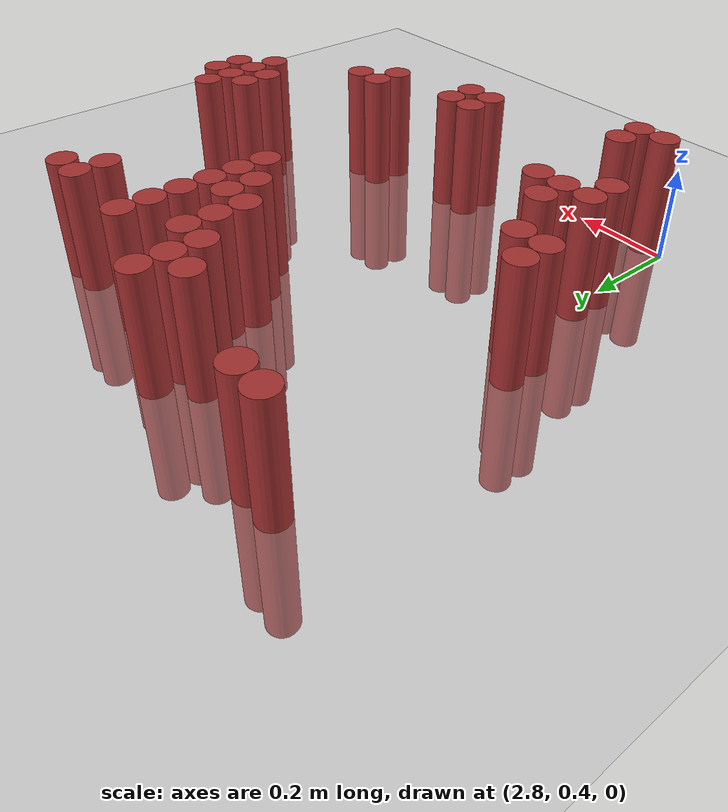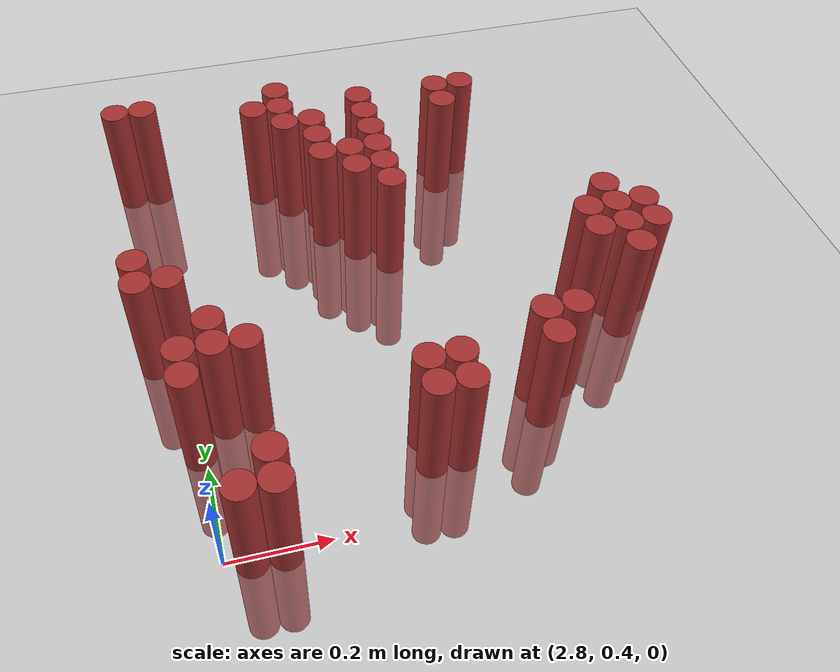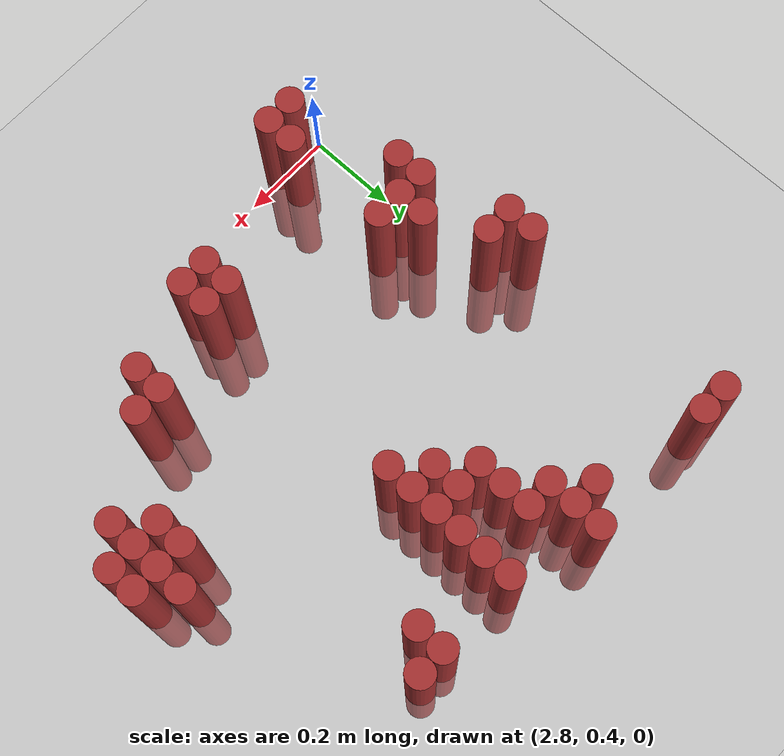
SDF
<sdf version="1.6">
 <world name="default">
  <model name="ground_plane">
   <static>1</static>
   <link name="link">
    <collision name="collision">
     <geometry><plane><normal>0 0 1</normal><size>100 100</size></plane></geometry>
     <surface><friction><ode><mu>100</mu><mu2>50</mu2></ode></friction></surface>
    </collision>
    <visual name="visual">
     <cast_shadows>0</cast_shadows>
     <geometry><plane><normal>0 0 1</normal><size>100 100</size></plane></geometry>
     <material>
      <script><uri>file://media/materials/scripts/gazebo.material</uri><name>Gazebo/Grey</name></script>
     </material>
    </visual>
   </link>
  </model>
  <model name="unit_cylinder_158">
   <static>1</static>
   <pose>2.730000 1.410000 0.000000 0.000000 0.000000 0.000000</pose>
   <link name="link">
    <inertial>
     <mass>1</mass>
     <inertia><ixx>0.145833</ixx><ixy>0</ixy><ixz>0</ixz><iyy>0.145833</iyy><iyz>0</iyz><izz>0.125</izz></inertia>
    </inertial>
    <collision name="collision">
     <geometry><cylinder><radius>0.030000</radius><length>0.5</length></cylinder></geometry>
    </collision>
    <visual name="visual">
     <geometry><cylinder><radius>0.030000</radius><length>0.5</length></cylinder></geometry>
     <material>
      <ambient>0.648000 0.192000 0.192000 1</ambient>
      <diffuse>0.648000 0.192000 0.192000 1</diffuse>
     </material>
     <material>
      <script><name>Gazebo/Grey</name><uri>file://media/materials/scripts/gazebo.material</uri></script>
     </material>
    </visual>
   </link>
  </model>
  <model name="unit_cylinder_159">
   <static>1</static>
   <pose>2.790000 1.410000 0.000000 0.000000 0.000000 0.000000</pose>
   <link name="link">
    <inertial>
     <mass>1</mass>
     <inertia><ixx>0.145833</ixx><ixy>0</ixy><ixz>0</ixz><iyy>0.145833</iyy><iyz>0</iyz><izz>0.125</izz></inertia>
    </inertial>
    <collision name="collision">
     <geometry><cylinder><radius>0.030000</radius><length>0.5</length></cylinder></geometry>
    </collision>
    <visual name="visual">
     <geometry><cylinder><radius>0.030000</radius><length>0.5</length></cylinder></geometry>
     <material>
      <ambient>0.648000 0.192000 0.192000 1</ambient>
      <diffuse>0.648000 0.192000 0.192000 1</diffuse>
     </material>
     <material>
      <script><name>Gazebo/Grey</name><uri>file://media/materials/scripts/gazebo.material</uri></script>
     </material>
    </visual>
   </link>
  </model>
  <model name="unit_cylinder_160">
   <static>1</static>
   <pose>3.090000 1.410000 0.000000 0.000000 0.000000 0.000000</pose>
   <link name="link">
    <inertial>
     <mass>1</mass>
     <inertia><ixx>0.145833</ixx><ixy>0</ixy><ixz>0</ixz><iyy>0.145833</iyy><iyz>0</iyz><izz>0.125</izz></inertia>
    </inertial>
    <collision name="collision">
     <geometry><cylinder><radius>0.030000</radius><length>0.5</length></cylinder></geometry>
    </collision>
    <visual name="visual">
     <geometry><cylinder><radius>0.030000</radius><length>0.5</length></cylinder></geometry>
     <material>
      <ambient>0.648000 0.192000 0.192000 1</ambient>
      <diffuse>0.648000 0.192000 0.192000 1</diffuse>
     </material>
     <material>
      <script><name>Gazebo/Grey</name><uri>file://media/materials/scripts/gazebo.material</uri></script>
     </material>
    </visual>
   </link>
  </model>
  <model name="unit_cylinder_164">
   <static>1</static>
   <pose>3.030000 1.350000 0.000000 0.000000 0.000000 0.000000</pose>
   <link name="link">
    <inertial>
     <mass>1</mass>
     <inertia><ixx>0.145833</ixx><ixy>0</ixy><ixz>0</ixz><iyy>0.145833</iyy><iyz>0</iyz><izz>0.125</izz></inertia>
    </inertial>
    <collision name="collision">
     <geometry><cylinder><radius>0.030000</radius><length>0.5</length></cylinder></geometry>
    </collision>
    <visual name="visual">
     <geometry><cylinder><radius>0.030000</radius><length>0.5</length></cylinder></geometry>
     <material>
      <ambient>0.648000 0.192000 0.192000 1</ambient>
      <diffuse>0.648000 0.192000 0.192000 1</diffuse>
     </material>
     <material>
      <script><name>Gazebo/Grey</name><uri>file://media/materials/scripts/gazebo.material</uri></script>
     </material>
    </visual>
   </link>
  </model>
  <model name="unit_cylinder_165">
   <static>1</static>
   <pose>3.090000 1.350000 0.000000 0.000000 0.000000 0.000000</pose>
   <link name="link">
    <inertial>
     <mass>1</mass>
     <inertia><ixx>0.145833</ixx><ixy>0</ixy><ixz>0</ixz><iyy>0.145833</iyy><iyz>0</iyz><izz>0.125</izz></inertia>
    </inertial>
    <collision name="collision">
     <geometry><cylinder><radius>0.030000</radius><length>0.5</length></cylinder></geometry>
    </collision>
    <visual name="visual">
     <geometry><cylinder><radius>0.030000</radius><length>0.5</length></cylinder></geometry>
     <material>
      <ambient>0.648000 0.192000 0.192000 1</ambient>
      <diffuse>0.648000 0.192000 0.192000 1</diffuse>
     </material>
     <material>
      <script><name>Gazebo/Grey</name><uri>file://media/materials/scripts/gazebo.material</uri></script>
     </material>
    </visual>
   </link>
  </model>
  <model name="unit_cylinder_166">
   <static>1</static>
   <pose>3.270000 1.350000 0.000000 0.000000 0.000000 0.000000</pose>
   <link name="link">
    <inertial>
     <mass>1</mass>
     <inertia><ixx>0.145833</ixx><ixy>0</ixy><ixz>0</ixz><iyy>0.145833</iyy><iyz>0</iyz><izz>0.125</izz></inertia>
    </inertial>
    <collision name="collision">
     <geometry><cylinder><radius>0.030000</radius><length>0.5</length></cylinder></geometry>
    </collision>
    <visual name="visual">
     <geometry><cylinder><radius>0.030000</radius><length>0.5</length></cylinder></geometry>
     <material>
      <ambient>0.648000 0.192000 0.192000 1</ambient>
      <diffuse>0.648000 0.192000 0.192000 1</diffuse>
     </material>
     <material>
      <script><name>Gazebo/Grey</name><uri>file://media/materials/scripts/gazebo.material</uri></script>
     </material>
    </visual>
   </link>
  </model>
  <model name="unit_cylinder_167">
   <static>1</static>
   <pose>3.450000 1.350000 0.000000 0.000000 0.000000 0.000000</pose>
   <link name="link">
    <inertial>
     <mass>1</mass>
     <inertia><ixx>0.145833</ixx><ixy>0</ixy><ixz>0</ixz><iyy>0.145833</iyy><iyz>0</iyz><izz>0.125</izz></inertia>
    </inertial>
    <collision name="collision">
     <geometry><cylinder><radius>0.030000</radius><length>0.5</length></cylinder></geometry>
    </collision>
    <visual name="visual">
     <geometry><cylinder><radius>0.030000</radius><length>0.5</length></cylinder></geometry>
     <material>
      <ambient>0.648000 0.192000 0.192000 1</ambient>
      <diffuse>0.648000 0.192000 0.192000 1</diffuse>
     </material>
     <material>
      <script><name>Gazebo/Grey</name><uri>file://media/materials/scripts/gazebo.material</uri></script>
     </material>
    </visual>
   </link>
  </model>
  <model name="unit_cylinder_168">
   <static>1</static>
   <pose>3.510000 1.350000 0.000000 0.000000 0.000000 0.000000</pose>
   <link name="link">
    <inertial>
     <mass>1</mass>
     <inertia><ixx>0.145833</ixx><ixy>0</ixy><ixz>0</ixz><iyy>0.145833</iyy><iyz>0</iyz><izz>0.125</izz></inertia>
    </inertial>
    <collision name="collision">
     <geometry><cylinder><radius>0.030000</radius><length>0.5</length></cylinder></geometry>
    </collision>
    <visual name="visual">
     <geometry><cylinder><radius>0.030000</radius><length>0.5</length></cylinder></geometry>
     <material>
      <ambient>0.648000 0.192000 0.192000 1</ambient>
      <diffuse>0.648000 0.192000 0.192000 1</diffuse>
     </material>
     <material>
      <script><name>Gazebo/Grey</name><uri>file://media/materials/scripts/gazebo.material</uri></script>
     </material>
    </visual>
   </link>
  </model>
  <model name="unit_cylinder_169">
   <static>1</static>
   <pose>3.090000 1.290000 0.000000 0.000000 0.000000 0.000000</pose>
   <link name="link">
    <inertial>
     <mass>1</mass>
     <inertia><ixx>0.145833</ixx><ixy>0</ixy><ixz>0</ixz><iyy>0.145833</iyy><iyz>0</iyz><izz>0.125</izz></inertia>
    </inertial>
    <collision name="collision">
     <geometry><cylinder><radius>0.030000</radius><length>0.5</length></cylinder></geometry>
    </collision>
    <visual name="visual">
     <geometry><cylinder><radius>0.030000</radius><length>0.5</length></cylinder></geometry>
     <material>
      <ambient>0.648000 0.192000 0.192000 1</ambient>
      <diffuse>0.648000 0.192000 0.192000 1</diffuse>
     </material>
     <material>
      <script><name>Gazebo/Grey</name><uri>file://media/materials/scripts/gazebo.material</uri></script>
     </material>
    </visual>
   </link>
  </model>
  <model name="unit_cylinder_170">
   <static>1</static>
   <pose>3.150000 1.290000 0.000000 0.000000 0.000000 0.000000</pose>
   <link name="link">
    <inertial>
     <mass>1</mass>
     <inertia><ixx>0.145833</ixx><ixy>0</ixy><ixz>0</ixz><iyy>0.145833</iyy><iyz>0</iyz><izz>0.125</izz></inertia>
    </inertial>
    <collision name="collision">
     <geometry><cylinder><radius>0.030000</radius><length>0.5</length></cylinder></geometry>
    </collision>
    <visual name="visual">
     <geometry><cylinder><radius>0.030000</radius><length>0.5</length></cylinder></geometry>
     <material>
      <ambient>0.648000 0.192000 0.192000 1</ambient>
      <diffuse>0.648000 0.192000 0.192000 1</diffuse>
     </material>
     <material>
      <script><name>Gazebo/Grey</name><uri>file://media/materials/scripts/gazebo.material</uri></script>
     </material>
    </visual>
   </link>
  </model>
  <model name="unit_cylinder_171">
   <static>1</static>
   <pose>3.270000 1.290000 0.000000 0.000000 0.000000 0.000000</pose>
   <link name="link">
    <inertial>
     <mass>1</mass>
     <inertia><ixx>0.145833</ixx><ixy>0</ixy><ixz>0</ixz><iyy>0.145833</iyy><iyz>0</iyz><izz>0.125</izz></inertia>
    </inertial>
    <collision name="collision">
     <geometry><cylinder><radius>0.030000</radius><length>0.5</length></cylinder></geometry>
    </collision>
    <visual name="visual">
     <geometry><cylinder><radius>0.030000</radius><length>0.5</length></cylinder></geometry>
     <material>
      <ambient>0.648000 0.192000 0.192000 1</ambient>
      <diffuse>0.648000 0.192000 0.192000 1</diffuse>
     </material>
     <material>
      <script><name>Gazebo/Grey</name><uri>file://media/materials/scripts/gazebo.material</uri></script>
     </material>
    </visual>
   </link>
  </model>
  <model name="unit_cylinder_172">
   <static>1</static>
   <pose>3.450000 1.290000 0.000000 0.000000 0.000000 0.000000</pose>
   <link name="link">
    <inertial>
     <mass>1</mass>
     <inertia><ixx>0.145833</ixx><ixy>0</ixy><ixz>0</ixz><iyy>0.145833</iyy><iyz>0</iyz><izz>0.125</izz></inertia>
    </inertial>
    <collision name="collision">
     <geometry><cylinder><radius>0.030000</radius><length>0.5</length></cylinder></geometry>
    </collision>
    <visual name="visual">
     <geometry><cylinder><radius>0.030000</radius><length>0.5</length></cylinder></geometry>
     <material>
      <ambient>0.648000 0.192000 0.192000 1</ambient>
      <diffuse>0.648000 0.192000 0.192000 1</diffuse>
     </material>
     <material>
      <script><name>Gazebo/Grey</name><uri>file://media/materials/scripts/gazebo.material</uri></script>
     </material>
    </visual>
   </link>
  </model>
  <model name="unit_cylinder_175">
   <static>1</static>
   <pose>3.150000 1.230000 0.000000 0.000000 0.000000 0.000000</pose>
   <link name="link">
    <inertial>
     <mass>1</mass>
     <inertia><ixx>0.145833</ixx><ixy>0</ixy><ixz>0</ixz><iyy>0.145833</iyy><iyz>0</iyz><izz>0.125</izz></inertia>
    </inertial>
    <collision name="collision">
     <geometry><cylinder><radius>0.030000</radius><length>0.5</length></cylinder></geometry>
    </collision>
    <visual name="visual">
     <geometry><cylinder><radius>0.030000</radius><length>0.5</length></cylinder></geometry>
     <material>
      <ambient>0.648000 0.192000 0.192000 1</ambient>
      <diffuse>0.648000 0.192000 0.192000 1</diffuse>
     </material>
     <material>
      <script><name>Gazebo/Grey</name><uri>file://media/materials/scripts/gazebo.material</uri></script>
     </material>
    </visual>
   </link>
  </model>
  <model name="unit_cylinder_176">
   <static>1</static>
   <pose>3.270000 1.230000 0.000000 0.000000 0.000000 0.000000</pose>
   <link name="link">
    <inertial>
     <mass>1</mass>
     <inertia><ixx>0.145833</ixx><ixy>0</ixy><ixz>0</ixz><iyy>0.145833</iyy><iyz>0</iyz><izz>0.125</izz></inertia>
    </inertial>
    <collision name="collision">
     <geometry><cylinder><radius>0.030000</radius><length>0.5</length></cylinder></geometry>
    </collision>
    <visual name="visual">
     <geometry><cylinder><radius>0.030000</radius><length>0.5</length></cylinder></geometry>
     <material>
      <ambient>0.648000 0.192000 0.192000 1</ambient>
      <diffuse>0.648000 0.192000 0.192000 1</diffuse>
     </material>
     <material>
      <script><name>Gazebo/Grey</name><uri>file://media/materials/scripts/gazebo.material</uri></script>
     </material>
    </visual>
   </link>
  </model>
  <model name="unit_cylinder_179">
   <static>1</static>
   <pose>3.150000 1.170000 0.000000 0.000000 0.000000 0.000000</pose>
   <link name="link">
    <inertial>
     <mass>1</mass>
     <inertia><ixx>0.145833</ixx><ixy>0</ixy><ixz>0</ixz><iyy>0.145833</iyy><iyz>0</iyz><izz>0.125</izz></inertia>
    </inertial>
    <collision name="collision">
     <geometry><cylinder><radius>0.030000</radius><length>0.5</length></cylinder></geometry>
    </collision>
    <visual name="visual">
     <geometry><cylinder><radius>0.030000</radius><length>0.5</length></cylinder></geometry>
     <material>
      <ambient>0.648000 0.192000 0.192000 1</ambient>
      <diffuse>0.648000 0.192000 0.192000 1</diffuse>
     </material>
     <material>
      <script><name>Gazebo/Grey</name><uri>file://media/materials/scripts/gazebo.material</uri></script>
     </material>
    </visual>
   </link>
  </model>
  <model name="unit_cylinder_180">
   <static>1</static>
   <pose>3.210000 1.170000 0.000000 0.000000 0.000000 0.000000</pose>
   <link name="link">
    <inertial>
     <mass>1</mass>
     <inertia><ixx>0.145833</ixx><ixy>0</ixy><ixz>0</ixz><iyy>0.145833</iyy><iyz>0</iyz><izz>0.125</izz></inertia>
    </inertial>
    <collision name="collision">
     <geometry><cylinder><radius>0.030000</radius><length>0.5</length></cylinder></geometry>
    </collision>
    <visual name="visual">
     <geometry><cylinder><radius>0.030000</radius><length>0.5</length></cylinder></geometry>
     <material>
      <ambient>0.648000 0.192000 0.192000 1</ambient>
      <diffuse>0.648000 0.192000 0.192000 1</diffuse>
     </material>
     <material>
      <script><name>Gazebo/Grey</name><uri>file://media/materials/scripts/gazebo.material</uri></script>
     </material>
    </visual>
   </link>
  </model>
  <model name="unit_cylinder_181">
   <static>1</static>
   <pose>3.270000 1.170000 0.000000 0.000000 0.000000 0.000000</pose>
   <link name="link">
    <inertial>
     <mass>1</mass>
     <inertia><ixx>0.145833</ixx><ixy>0</ixy><ixz>0</ixz><iyy>0.145833</iyy><iyz>0</iyz><izz>0.125</izz></inertia>
    </inertial>
    <collision name="collision">
     <geometry><cylinder><radius>0.030000</radius><length>0.5</length></cylinder></geometry>
    </collision>
    <visual name="visual">
     <geometry><cylinder><radius>0.030000</radius><length>0.5</length></cylinder></geometry>
     <material>
      <ambient>0.648000 0.192000 0.192000 1</ambient>
      <diffuse>0.648000 0.192000 0.192000 1</diffuse>
     </material>
     <material>
      <script><name>Gazebo/Grey</name><uri>file://media/materials/scripts/gazebo.material</uri></script>
     </material>
    </visual>
   </link>
  </model>
  <model name="unit_cylinder_183">
   <static>1</static>
   <pose>3.210000 1.110000 0.000000 0.000000 0.000000 0.000000</pose>
   <link name="link">
    <inertial>
     <mass>1</mass>
     <inertia><ixx>0.145833</ixx><ixy>0</ixy><ixz>0</ixz><iyy>0.145833</iyy><iyz>0</iyz><izz>0.125</izz></inertia>
    </inertial>
    <collision name="collision">
     <geometry><cylinder><radius>0.030000</radius><length>0.5</length></cylinder></geometry>
    </collision>
    <visual name="visual">
     <geometry><cylinder><radius>0.030000</radius><length>0.5</length></cylinder></geometry>
     <material>
      <ambient>0.648000 0.192000 0.192000 1</ambient>
      <diffuse>0.648000 0.192000 0.192000 1</diffuse>
     </material>
     <material>
      <script><name>Gazebo/Grey</name><uri>file://media/materials/scripts/gazebo.material</uri></script>
     </material>
    </visual>
   </link>
  </model>
  <model name="unit_cylinder_184">
   <static>1</static>
   <pose>3.270000 1.110000 0.000000 0.000000 0.000000 0.000000</pose>
   <link name="link">
    <inertial>
     <mass>1</mass>
     <inertia><ixx>0.145833</ixx><ixy>0</ixy><ixz>0</ixz><iyy>0.145833</iyy><iyz>0</iyz><izz>0.125</izz></inertia>
    </inertial>
    <collision name="collision">
     <geometry><cylinder><radius>0.030000</radius><length>0.5</length></cylinder></geometry>
    </collision>
    <visual name="visual">
     <geometry><cylinder><radius>0.030000</radius><length>0.5</length></cylinder></geometry>
     <material>
      <ambient>0.648000 0.192000 0.192000 1</ambient>
      <diffuse>0.648000 0.192000 0.192000 1</diffuse>
     </material>
     <material>
      <script><name>Gazebo/Grey</name><uri>file://media/materials/scripts/gazebo.material</uri></script>
     </material>
    </visual>
   </link>
  </model>
  <model name="unit_cylinder_187">
   <static>1</static>
   <pose>3.270000 1.050000 0.000000 0.000000 0.000000 0.000000</pose>
   <link name="link">
    <inertial>
     <mass>1</mass>
     <inertia><ixx>0.145833</ixx><ixy>0</ixy><ixz>0</ixz><iyy>0.145833</iyy><iyz>0</iyz><izz>0.125</izz></inertia>
    </inertial>
    <collision name="collision">
     <geometry><cylinder><radius>0.030000</radius><length>0.5</length></cylinder></geometry>
    </collision>
    <visual name="visual">
     <geometry><cylinder><radius>0.030000</radius><length>0.5</length></cylinder></geometry>
     <material>
      <ambient>0.648000 0.192000 0.192000 1</ambient>
      <diffuse>0.648000 0.192000 0.192000 1</diffuse>
     </material>
     <material>
      <script><name>Gazebo/Grey</name><uri>file://media/materials/scripts/gazebo.material</uri></script>
     </material>
    </visual>
   </link>
  </model>
  <model name="unit_cylinder_188">
   <static>1</static>
   <pose>2.730000 0.930000 0.000000 0.000000 0.000000 0.000000</pose>
   <link name="link">
    <inertial>
     <mass>1</mass>
     <inertia><ixx>0.145833</ixx><ixy>0</ixy><ixz>0</ixz><iyy>0.145833</iyy><iyz>0</iyz><izz>0.125</izz></inertia>
    </inertial>
    <collision name="collision">
     <geometry><cylinder><radius>0.030000</radius><length>0.5</length></cylinder></geometry>
    </collision>
    <visual name="visual">
     <geometry><cylinder><radius>0.030000</radius><length>0.5</length></cylinder></geometry>
     <material>
      <ambient>0.648000 0.192000 0.192000 1</ambient>
      <diffuse>0.648000 0.192000 0.192000 1</diffuse>
     </material>
     <material>
      <script><name>Gazebo/Grey</name><uri>file://media/materials/scripts/gazebo.material</uri></script>
     </material>
    </visual>
   </link>
  </model>
  <model name="unit_cylinder_189">
   <static>1</static>
   <pose>3.690000 0.930000 0.000000 0.000000 0.000000 0.000000</pose>
   <link name="link">
    <inertial>
     <mass>1</mass>
     <inertia><ixx>0.145833</ixx><ixy>0</ixy><ixz>0</ixz><iyy>0.145833</iyy><iyz>0</iyz><izz>0.125</izz></inertia>
    </inertial>
    <collision name="collision">
     <geometry><cylinder><radius>0.030000</radius><length>0.5</length></cylinder></geometry>
    </collision>
    <visual name="visual">
     <geometry><cylinder><radius>0.030000</radius><length>0.5</length></cylinder></geometry>
     <material>
      <ambient>0.648000 0.192000 0.192000 1</ambient>
      <diffuse>0.648000 0.192000 0.192000 1</diffuse>
     </material>
     <material>
      <script><name>Gazebo/Grey</name><uri>file://media/materials/scripts/gazebo.material</uri></script>
     </material>
    </visual>
   </link>
  </model>
  <model name="unit_cylinder_190">
   <static>1</static>
   <pose>2.730000 0.870000 0.000000 0.000000 0.000000 0.000000</pose>
   <link name="link">
    <inertial>
     <mass>1</mass>
     <inertia><ixx>0.145833</ixx><ixy>0</ixy><ixz>0</ixz><iyy>0.145833</iyy><iyz>0</iyz><izz>0.125</izz></inertia>
    </inertial>
    <collision name="collision">
     <geometry><cylinder><radius>0.030000</radius><length>0.5</length></cylinder></geometry>
    </collision>
    <visual name="visual">
     <geometry><cylinder><radius>0.030000</radius><length>0.5</length></cylinder></geometry>
     <material>
      <ambient>0.648000 0.192000 0.192000 1</ambient>
      <diffuse>0.648000 0.192000 0.192000 1</diffuse>
     </material>
     <material>
      <script><name>Gazebo/Grey</name><uri>file://media/materials/scripts/gazebo.material</uri></script>
     </material>
    </visual>
   </link>
  </model>
  <model name="unit_cylinder_191">
   <static>1</static>
   <pose>2.790000 0.870000 0.000000 0.000000 0.000000 0.000000</pose>
   <link name="link">
    <inertial>
     <mass>1</mass>
     <inertia><ixx>0.145833</ixx><ixy>0</ixy><ixz>0</ixz><iyy>0.145833</iyy><iyz>0</iyz><izz>0.125</izz></inertia>
    </inertial>
    <collision name="collision">
     <geometry><cylinder><radius>0.030000</radius><length>0.5</length></cylinder></geometry>
    </collision>
    <visual name="visual">
     <geometry><cylinder><radius>0.030000</radius><length>0.5</length></cylinder></geometry>
     <material>
      <ambient>0.648000 0.192000 0.192000 1</ambient>
      <diffuse>0.648000 0.192000 0.192000 1</diffuse>
     </material>
     <material>
      <script><name>Gazebo/Grey</name><uri>file://media/materials/scripts/gazebo.material</uri></script>
     </material>
    </visual>
   </link>
  </model>
  <model name="unit_cylinder_192">
   <static>1</static>
   <pose>3.630000 0.870000 0.000000 0.000000 0.000000 0.000000</pose>
   <link name="link">
    <inertial>
     <mass>1</mass>
     <inertia><ixx>0.145833</ixx><ixy>0</ixy><ixz>0</ixz><iyy>0.145833</iyy><iyz>0</iyz><izz>0.125</izz></inertia>
    </inertial>
    <collision name="collision">
     <geometry><cylinder><radius>0.030000</radius><length>0.5</length></cylinder></geometry>
    </collision>
    <visual name="visual">
     <geometry><cylinder><radius>0.030000</radius><length>0.5</length></cylinder></geometry>
     <material>
      <ambient>0.648000 0.192000 0.192000 1</ambient>
      <diffuse>0.648000 0.192000 0.192000 1</diffuse>
     </material>
     <material>
      <script><name>Gazebo/Grey</name><uri>file://media/materials/scripts/gazebo.material</uri></script>
     </material>
    </visual>
   </link>
  </model>
  <model name="unit_cylinder_193">
   <static>1</static>
   <pose>3.690000 0.870000 0.000000 0.000000 0.000000 0.000000</pose>
   <link name="link">
    <inertial>
     <mass>1</mass>
     <inertia><ixx>0.145833</ixx><ixy>0</ixy><ixz>0</ixz><iyy>0.145833</iyy><iyz>0</iyz><izz>0.125</izz></inertia>
    </inertial>
    <collision name="collision">
     <geometry><cylinder><radius>0.030000</radius><length>0.5</length></cylinder></geometry>
    </collision>
    <visual name="visual">
     <geometry><cylinder><radius>0.030000</radius><length>0.5</length></cylinder></geometry>
     <material>
      <ambient>0.648000 0.192000 0.192000 1</ambient>
      <diffuse>0.648000 0.192000 0.192000 1</diffuse>
     </material>
     <material>
      <script><name>Gazebo/Grey</name><uri>file://media/materials/scripts/gazebo.material</uri></script>
     </material>
    </visual>
   </link>
  </model>
  <model name="unit_cylinder_194">
   <static>1</static>
   <pose>3.750000 0.870000 0.000000 0.000000 0.000000 0.000000</pose>
   <link name="link">
    <inertial>
     <mass>1</mass>
     <inertia><ixx>0.145833</ixx><ixy>0</ixy><ixz>0</ixz><iyy>0.145833</iyy><iyz>0</iyz><izz>0.125</izz></inertia>
    </inertial>
    <collision name="collision">
     <geometry><cylinder><radius>0.030000</radius><length>0.5</length></cylinder></geometry>
    </collision>
    <visual name="visual">
     <geometry><cylinder><radius>0.030000</radius><length>0.5</length></cylinder></geometry>
     <material>
      <ambient>0.648000 0.192000 0.192000 1</ambient>
      <diffuse>0.648000 0.192000 0.192000 1</diffuse>
     </material>
     <material>
      <script><name>Gazebo/Grey</name><uri>file://media/materials/scripts/gazebo.material</uri></script>
     </material>
    </visual>
   </link>
  </model>
  <model name="unit_cylinder_195">
   <static>1</static>
   <pose>3.630000 0.810000 0.000000 0.000000 0.000000 0.000000</pose>
   <link name="link">
    <inertial>
     <mass>1</mass>
     <inertia><ixx>0.145833</ixx><ixy>0</ixy><ixz>0</ixz><iyy>0.145833</iyy><iyz>0</iyz><izz>0.125</izz></inertia>
    </inertial>
    <collision name="collision">
     <geometry><cylinder><radius>0.030000</radius><length>0.5</length></cylinder></geometry>
    </collision>
    <visual name="visual">
     <geometry><cylinder><radius>0.030000</radius><length>0.5</length></cylinder></geometry>
     <material>
      <ambient>0.648000 0.192000 0.192000 1</ambient>
      <diffuse>0.648000 0.192000 0.192000 1</diffuse>
     </material>
     <material>
      <script><name>Gazebo/Grey</name><uri>file://media/materials/scripts/gazebo.material</uri></script>
     </material>
    </visual>
   </link>
  </model>
  <model name="unit_cylinder_196">
   <static>1</static>
   <pose>3.690000 0.810000 0.000000 0.000000 0.000000 0.000000</pose>
   <link name="link">
    <inertial>
     <mass>1</mass>
     <inertia><ixx>0.145833</ixx><ixy>0</ixy><ixz>0</ixz><iyy>0.145833</iyy><iyz>0</iyz><izz>0.125</izz></inertia>
    </inertial>
    <collision name="collision">
     <geometry><cylinder><radius>0.030000</radius><length>0.5</length></cylinder></geometry>
    </collision>
    <visual name="visual">
     <geometry><cylinder><radius>0.030000</radius><length>0.5</length></cylinder></geometry>
     <material>
      <ambient>0.648000 0.192000 0.192000 1</ambient>
      <diffuse>0.648000 0.192000 0.192000 1</diffuse>
     </material>
     <material>
      <script><name>Gazebo/Grey</name><uri>file://media/materials/scripts/gazebo.material</uri></script>
     </material>
    </visual>
   </link>
  </model>
  <model name="unit_cylinder_197">
   <static>1</static>
   <pose>3.750000 0.810000 0.000000 0.000000 0.000000 0.000000</pose>
   <link name="link">
    <inertial>
     <mass>1</mass>
     <inertia><ixx>0.145833</ixx><ixy>0</ixy><ixz>0</ixz><iyy>0.145833</iyy><iyz>0</iyz><izz>0.125</izz></inertia>
    </inertial>
    <collision name="collision">
     <geometry><cylinder><radius>0.030000</radius><length>0.5</length></cylinder></geometry>
    </collision>
    <visual name="visual">
     <geometry><cylinder><radius>0.030000</radius><length>0.5</length></cylinder></geometry>
     <material>
      <ambient>0.648000 0.192000 0.192000 1</ambient>
      <diffuse>0.648000 0.192000 0.192000 1</diffuse>
     </material>
     <material>
      <script><name>Gazebo/Grey</name><uri>file://media/materials/scripts/gazebo.material</uri></script>
     </material>
    </visual>
   </link>
  </model>
  <model name="unit_cylinder_198">
   <static>1</static>
   <pose>2.850000 0.750000 0.000000 0.000000 0.000000 0.000000</pose>
   <link name="link">
    <inertial>
     <mass>1</mass>
     <inertia><ixx>0.145833</ixx><ixy>0</ixy><ixz>0</ixz><iyy>0.145833</iyy><iyz>0</iyz><izz>0.125</izz></inertia>
    </inertial>
    <collision name="collision">
     <geometry><cylinder><radius>0.030000</radius><length>0.5</length></cylinder></geometry>
    </collision>
    <visual name="visual">
     <geometry><cylinder><radius>0.030000</radius><length>0.5</length></cylinder></geometry>
     <material>
      <ambient>0.648000 0.192000 0.192000 1</ambient>
      <diffuse>0.648000 0.192000 0.192000 1</diffuse>
     </material>
     <material>
      <script><name>Gazebo/Grey</name><uri>file://media/materials/scripts/gazebo.material</uri></script>
     </material>
    </visual>
   </link>
  </model>
  <model name="unit_cylinder_199">
   <static>1</static>
   <pose>3.690000 0.750000 0.000000 0.000000 0.000000 0.000000</pose>
   <link name="link">
    <inertial>
     <mass>1</mass>
     <inertia><ixx>0.145833</ixx><ixy>0</ixy><ixz>0</ixz><iyy>0.145833</iyy><iyz>0</iyz><izz>0.125</izz></inertia>
    </inertial>
    <collision name="collision">
     <geometry><cylinder><radius>0.030000</radius><length>0.5</length></cylinder></geometry>
    </collision>
    <visual name="visual">
     <geometry><cylinder><radius>0.030000</radius><length>0.5</length></cylinder></geometry>
     <material>
      <ambient>0.648000 0.192000 0.192000 1</ambient>
      <diffuse>0.648000 0.192000 0.192000 1</diffuse>
     </material>
     <material>
      <script><name>Gazebo/Grey</name><uri>file://media/materials/scripts/gazebo.material</uri></script>
     </material>
    </visual>
   </link>
  </model>
  <model name="unit_cylinder_200">
   <static>1</static>
   <pose>2.790000 0.690000 0.000000 0.000000 0.000000 0.000000</pose>
   <link name="link">
    <inertial>
     <mass>1</mass>
     <inertia><ixx>0.145833</ixx><ixy>0</ixy><ixz>0</ixz><iyy>0.145833</iyy><iyz>0</iyz><izz>0.125</izz></inertia>
    </inertial>
    <collision name="collision">
     <geometry><cylinder><radius>0.030000</radius><length>0.5</length></cylinder></geometry>
    </collision>
    <visual name="visual">
     <geometry><cylinder><radius>0.030000</radius><length>0.5</length></cylinder></geometry>
     <material>
      <ambient>0.648000 0.192000 0.192000 1</ambient>
      <diffuse>0.648000 0.192000 0.192000 1</diffuse>
     </material>
     <material>
      <script><name>Gazebo/Grey</name><uri>file://media/materials/scripts/gazebo.material</uri></script>
     </material>
    </visual>
   </link>
  </model>
  <model name="unit_cylinder_201">
   <static>1</static>
   <pose>2.850000 0.690000 0.000000 0.000000 0.000000 0.000000</pose>
   <link name="link">
    <inertial>
     <mass>1</mass>
     <inertia><ixx>0.145833</ixx><ixy>0</ixy><ixz>0</ixz><iyy>0.145833</iyy><iyz>0</iyz><izz>0.125</izz></inertia>
    </inertial>
    <collision name="collision">
     <geometry><cylinder><radius>0.030000</radius><length>0.5</length></cylinder></geometry>
    </collision>
    <visual name="visual">
     <geometry><cylinder><radius>0.030000</radius><length>0.5</length></cylinder></geometry>
     <material>
      <ambient>0.648000 0.192000 0.192000 1</ambient>
      <diffuse>0.648000 0.192000 0.192000 1</diffuse>
     </material>
     <material>
      <script><name>Gazebo/Grey</name><uri>file://media/materials/scripts/gazebo.material</uri></script>
     </material>
    </visual>
   </link>
  </model>
  <model name="unit_cylinder_202">
   <static>1</static>
   <pose>2.910000 0.690000 0.000000 0.000000 0.000000 0.000000</pose>
   <link name="link">
    <inertial>
     <mass>1</mass>
     <inertia><ixx>0.145833</ixx><ixy>0</ixy><ixz>0</ixz><iyy>0.145833</iyy><iyz>0</iyz><izz>0.125</izz></inertia>
    </inertial>
    <collision name="collision">
     <geometry><cylinder><radius>0.030000</radius><length>0.5</length></cylinder></geometry>
    </collision>
    <visual name="visual">
     <geometry><cylinder><radius>0.030000</radius><length>0.5</length></cylinder></geometry>
     <material>
      <ambient>0.648000 0.192000 0.192000 1</ambient>
      <diffuse>0.648000 0.192000 0.192000 1</diffuse>
     </material>
     <material>
      <script><name>Gazebo/Grey</name><uri>file://media/materials/scripts/gazebo.material</uri></script>
     </material>
    </visual>
   </link>
  </model>
  <model name="unit_cylinder_203">
   <static>1</static>
   <pose>2.790000 0.630000 0.000000 0.000000 0.000000 0.000000</pose>
   <link name="link">
    <inertial>
     <mass>1</mass>
     <inertia><ixx>0.145833</ixx><ixy>0</ixy><ixz>0</ixz><iyy>0.145833</iyy><iyz>0</iyz><izz>0.125</izz></inertia>
    </inertial>
    <collision name="collision">
     <geometry><cylinder><radius>0.030000</radius><length>0.5</length></cylinder></geometry>
    </collision>
    <visual name="visual">
     <geometry><cylinder><radius>0.030000</radius><length>0.5</length></cylinder></geometry>
     <material>
      <ambient>0.648000 0.192000 0.192000 1</ambient>
      <diffuse>0.648000 0.192000 0.192000 1</diffuse>
     </material>
     <material>
      <script><name>Gazebo/Grey</name><uri>file://media/materials/scripts/gazebo.material</uri></script>
     </material>
    </visual>
   </link>
  </model>
  <model name="unit_cylinder_204">
   <static>1</static>
   <pose>3.450000 0.630000 0.000000 0.000000 0.000000 0.000000</pose>
   <link name="link">
    <inertial>
     <mass>1</mass>
     <inertia><ixx>0.145833</ixx><ixy>0</ixy><ixz>0</ixz><iyy>0.145833</iyy><iyz>0</iyz><izz>0.125</izz></inertia>
    </inertial>
    <collision name="collision">
     <geometry><cylinder><radius>0.030000</radius><length>0.5</length></cylinder></geometry>
    </collision>
    <visual name="visual">
     <geometry><cylinder><radius>0.030000</radius><length>0.5</length></cylinder></geometry>
     <material>
      <ambient>0.648000 0.192000 0.192000 1</ambient>
      <diffuse>0.648000 0.192000 0.192000 1</diffuse>
     </material>
     <material>
      <script><name>Gazebo/Grey</name><uri>file://media/materials/scripts/gazebo.material</uri></script>
     </material>
    </visual>
   </link>
  </model>
  <model name="unit_cylinder_205">
   <static>1</static>
   <pose>3.510000 0.630000 0.000000 0.000000 0.000000 0.000000</pose>
   <link name="link">
    <inertial>
     <mass>1</mass>
     <inertia><ixx>0.145833</ixx><ixy>0</ixy><ixz>0</ixz><iyy>0.145833</iyy><iyz>0</iyz><izz>0.125</izz></inertia>
    </inertial>
    <collision name="collision">
     <geometry><cylinder><radius>0.030000</radius><length>0.5</length></cylinder></geometry>
    </collision>
    <visual name="visual">
     <geometry><cylinder><radius>0.030000</radius><length>0.5</length></cylinder></geometry>
     <material>
      <ambient>0.648000 0.192000 0.192000 1</ambient>
      <diffuse>0.648000 0.192000 0.192000 1</diffuse>
     </material>
     <material>
      <script><name>Gazebo/Grey</name><uri>file://media/materials/scripts/gazebo.material</uri></script>
     </material>
    </visual>
   </link>
  </model>
  <model name="unit_cylinder_206">
   <static>1</static>
   <pose>3.210000 0.570000 0.000000 0.000000 0.000000 0.000000</pose>
   <link name="link">
    <inertial>
     <mass>1</mass>
     <inertia><ixx>0.145833</ixx><ixy>0</ixy><ixz>0</ixz><iyy>0.145833</iyy><iyz>0</iyz><izz>0.125</izz></inertia>
    </inertial>
    <collision name="collision">
     <geometry><cylinder><radius>0.030000</radius><length>0.5</length></cylinder></geometry>
    </collision>
    <visual name="visual">
     <geometry><cylinder><radius>0.030000</radius><length>0.5</length></cylinder></geometry>
     <material>
      <ambient>0.648000 0.192000 0.192000 1</ambient>
      <diffuse>0.648000 0.192000 0.192000 1</diffuse>
     </material>
     <material>
      <script><name>Gazebo/Grey</name><uri>file://media/materials/scripts/gazebo.material</uri></script>
     </material>
    </visual>
   </link>
  </model>
  <model name="unit_cylinder_207">
   <static>1</static>
   <pose>3.270000 0.570000 0.000000 0.000000 0.000000 0.000000</pose>
   <link name="link">
    <inertial>
     <mass>1</mass>
     <inertia><ixx>0.145833</ixx><ixy>0</ixy><ixz>0</ixz><iyy>0.145833</iyy><iyz>0</iyz><izz>0.125</izz></inertia>
    </inertial>
    <collision name="collision">
     <geometry><cylinder><radius>0.030000</radius><length>0.5</length></cylinder></geometry>
    </collision>
    <visual name="visual">
     <geometry><cylinder><radius>0.030000</radius><length>0.5</length></cylinder></geometry>
     <material>
      <ambient>0.648000 0.192000 0.192000 1</ambient>
      <diffuse>0.648000 0.192000 0.192000 1</diffuse>
     </material>
     <material>
      <script><name>Gazebo/Grey</name><uri>file://media/materials/scripts/gazebo.material</uri></script>
     </material>
    </visual>
   </link>
  </model>
  <model name="unit_cylinder_208">
   <static>1</static>
   <pose>3.450000 0.570000 0.000000 0.000000 0.000000 0.000000</pose>
   <link name="link">
    <inertial>
     <mass>1</mass>
     <inertia><ixx>0.145833</ixx><ixy>0</ixy><ixz>0</ixz><iyy>0.145833</iyy><iyz>0</iyz><izz>0.125</izz></inertia>
    </inertial>
    <collision name="collision">
     <geometry><cylinder><radius>0.030000</radius><length>0.5</length></cylinder></geometry>
    </collision>
    <visual name="visual">
     <geometry><cylinder><radius>0.030000</radius><length>0.5</length></cylinder></geometry>
     <material>
      <ambient>0.648000 0.192000 0.192000 1</ambient>
      <diffuse>0.648000 0.192000 0.192000 1</diffuse>
     </material>
     <material>
      <script><name>Gazebo/Grey</name><uri>file://media/materials/scripts/gazebo.material</uri></script>
     </material>
    </visual>
   </link>
  </model>
  <model name="unit_cylinder_209">
   <static>1</static>
   <pose>3.210000 0.510000 0.000000 0.000000 0.000000 0.000000</pose>
   <link name="link">
    <inertial>
     <mass>1</mass>
     <inertia><ixx>0.145833</ixx><ixy>0</ixy><ixz>0</ixz><iyy>0.145833</iyy><iyz>0</iyz><izz>0.125</izz></inertia>
    </inertial>
    <collision name="collision">
     <geometry><cylinder><radius>0.030000</radius><length>0.5</length></cylinder></geometry>
    </collision>
    <visual name="visual">
     <geometry><cylinder><radius>0.030000</radius><length>0.5</length></cylinder></geometry>
     <material>
      <ambient>0.648000 0.192000 0.192000 1</ambient>
      <diffuse>0.648000 0.192000 0.192000 1</diffuse>
     </material>
     <material>
      <script><name>Gazebo/Grey</name><uri>file://media/materials/scripts/gazebo.material</uri></script>
     </material>
    </visual>
   </link>
  </model>
  <model name="unit_cylinder_210">
   <static>1</static>
   <pose>3.270000 0.510000 0.000000 0.000000 0.000000 0.000000</pose>
   <link name="link">
    <inertial>
     <mass>1</mass>
     <inertia><ixx>0.145833</ixx><ixy>0</ixy><ixz>0</ixz><iyy>0.145833</iyy><iyz>0</iyz><izz>0.125</izz></inertia>
    </inertial>
    <collision name="collision">
     <geometry><cylinder><radius>0.030000</radius><length>0.5</length></cylinder></geometry>
    </collision>
    <visual name="visual">
     <geometry><cylinder><radius>0.030000</radius><length>0.5</length></cylinder></geometry>
     <material>
      <ambient>0.648000 0.192000 0.192000 1</ambient>
      <diffuse>0.648000 0.192000 0.192000 1</diffuse>
     </material>
     <material>
      <script><name>Gazebo/Grey</name><uri>file://media/materials/scripts/gazebo.material</uri></script>
     </material>
    </visual>
   </link>
  </model>
  <model name="unit_cylinder_211">
   <static>1</static>
   <pose>2.910000 0.450000 0.000000 0.000000 0.000000 0.000000</pose>
   <link name="link">
    <inertial>
     <mass>1</mass>
     <inertia><ixx>0.145833</ixx><ixy>0</ixy><ixz>0</ixz><iyy>0.145833</iyy><iyz>0</iyz><izz>0.125</izz></inertia>
    </inertial>
    <collision name="collision">
     <geometry><cylinder><radius>0.030000</radius><length>0.5</length></cylinder></geometry>
    </collision>
    <visual name="visual">
     <geometry><cylinder><radius>0.030000</radius><length>0.5</length></cylinder></geometry>
     <material>
      <ambient>0.648000 0.192000 0.192000 1</ambient>
      <diffuse>0.648000 0.192000 0.192000 1</diffuse>
     </material>
     <material>
      <script><name>Gazebo/Grey</name><uri>file://media/materials/scripts/gazebo.material</uri></script>
     </material>
    </visual>
   </link>
  </model>
  <model name="unit_cylinder_212">
   <static>1</static>
   <pose>2.850000 0.390000 0.000000 0.000000 0.000000 0.000000</pose>
   <link name="link">
    <inertial>
     <mass>1</mass>
     <inertia><ixx>0.145833</ixx><ixy>0</ixy><ixz>0</ixz><iyy>0.145833</iyy><iyz>0</iyz><izz>0.125</izz></inertia>
    </inertial>
    <collision name="collision">
     <geometry><cylinder><radius>0.030000</radius><length>0.5</length></cylinder></geometry>
    </collision>
    <visual name="visual">
     <geometry><cylinder><radius>0.030000</radius><length>0.5</length></cylinder></geometry>
     <material>
      <ambient>0.648000 0.192000 0.192000 1</ambient>
      <diffuse>0.648000 0.192000 0.192000 1</diffuse>
     </material>
     <material>
      <script><name>Gazebo/Grey</name><uri>file://media/materials/scripts/gazebo.material</uri></script>
     </material>
    </visual>
   </link>
  </model>
  <model name="unit_cylinder_213">
   <static>1</static>
   <pose>2.910000 0.390000 0.000000 0.000000 0.000000 0.000000</pose>
   <link name="link">
    <inertial>
     <mass>1</mass>
     <inertia><ixx>0.145833</ixx><ixy>0</ixy><ixz>0</ixz><iyy>0.145833</iyy><iyz>0</iyz><izz>0.125</izz></inertia>
    </inertial>
    <collision name="collision">
     <geometry><cylinder><radius>0.030000</radius><length>0.5</length></cylinder></geometry>
    </collision>
    <visual name="visual">
     <geometry><cylinder><radius>0.030000</radius><length>0.5</length></cylinder></geometry>
     <material>
      <ambient>0.648000 0.192000 0.192000 1</ambient>
      <diffuse>0.648000 0.192000 0.192000 1</diffuse>
     </material>
     <material>
      <script><name>Gazebo/Grey</name><uri>file://media/materials/scripts/gazebo.material</uri></script>
     </material>
    </visual>
   </link>
  </model>
 </world>
</sdf>
